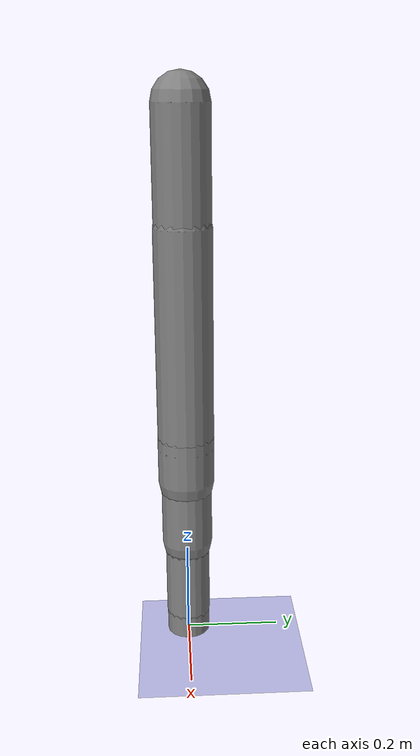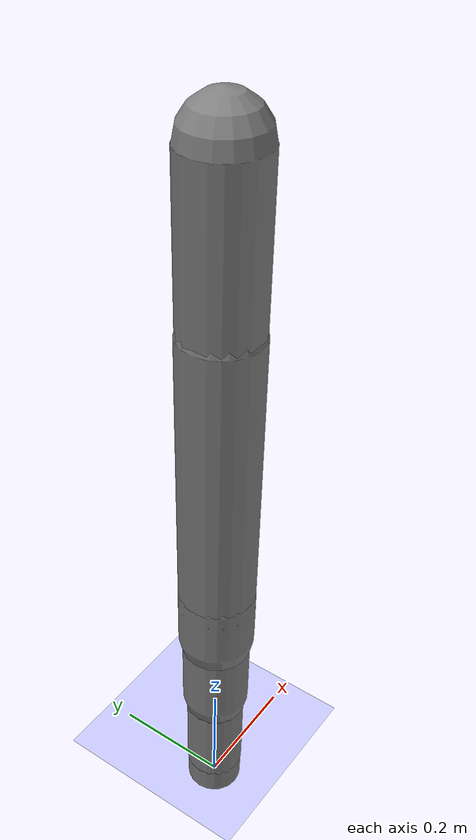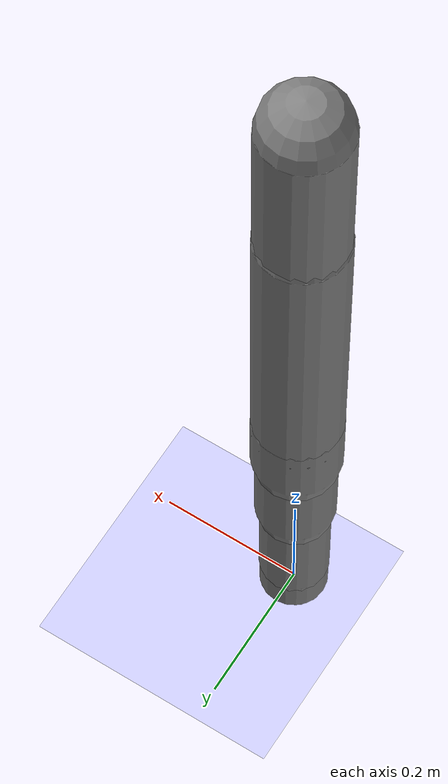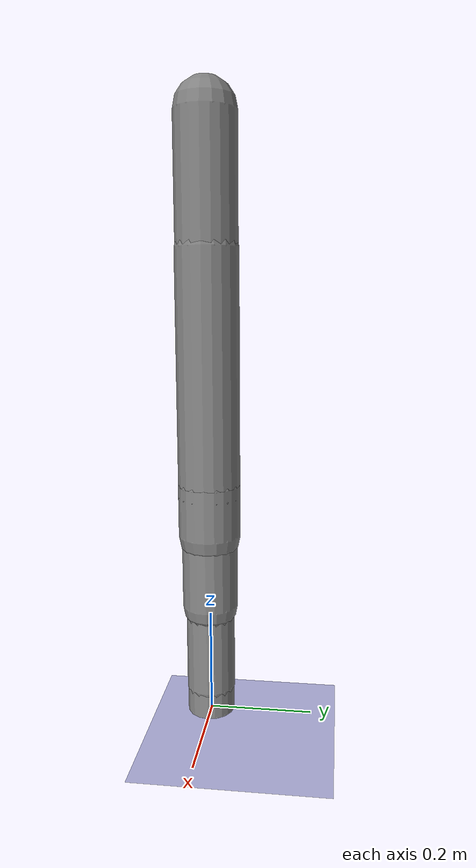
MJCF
<?xml version='1.0' encoding='UTF-8'?>
<mujoco model="robot_model">
  <worldbody>
    <light name="light" pos="0 -3 10" dir="0 0.5 -1" diffuse=".8 .8 .8" specular="0.1 0.1 0.1"/>
    <geom name="floor" type="plane" size="10.0 10.0 0.1" pos="0 0 0" rgba="0.8 0.8 1 1"/>
    <body name="limb0" pos="0 0 0">
      <geom type="capsule" fromto="0 0 0 0 0 0.29200954395426965" size="0.046492057454971134" density="712.8819842394439"/>
      <site type="sphere" size="0.01" name="limb0_site0" pos="0 0 0.22074129797852207"/>
      <site type="sphere" size="0.01" name="limb0_site1" pos="0 0 0.050759486582267664"/>
      <freejoint name="limb0_root"/>
      <body name="limb1" pos="0 0 0.22074129797852207">
        <geom type="capsule" fromto="0 0 0 0 0 0.3600789675341075" size="0.05407429494422454" density="619.3655655626594"/>
        <site type="sphere" size="0.01" name="limb1_site0" pos="0 0 0.14348370626259008"/>
        <body name="limb2" pos="0 0 0.14348370626259008">
          <geom type="capsule" fromto="0 0 0 0 0 0.1" size="0.06" density="971.2963022118728"/>
          <site type="sphere" size="0.01" name="limb2_site0" pos="0 0 0.08584434272995117"/>
          <body name="limb3" pos="0 0 0.08584434272995117">
            <geom type="capsule" fromto="0 0 0 0 0 0.3246346816300574" size="0.027985800535247497" density="877.8764988614424"/>
            <site type="sphere" size="0.01" name="limb3_site0" pos="0 0 0.30592291138675143"/>
            <body name="limb4" pos="0 0 0.30592291138675143">
              <geom type="capsule" fromto="0 0 0 0 0 0.38664313349290746" size="0.05825338637690475" density="1129.6842087872121"/>
              <joint name="joint_limb3_limb4_0" type="hinge" axis="0 0 1" range="-32.23675465955068 32.23675465955068" damping="5.0"/>
            </body>
            <joint name="joint_limb2_limb3_0" type="hinge" axis="1 0 0" range="-102.98912811609488 102.98912811609488" damping="5.0"/>
          </body>
          <joint name="joint_limb1_limb2_0" type="hinge" axis="1 0 0" range="-39.88258003655788 39.88258003655788" damping="5.0"/>
        </body>
        <joint name="joint_limb0_limb1_0" type="hinge" axis="0 1 0" range="-118.27639451941653 118.27639451941653" damping="5.0"/>
      </body>
      <body name="limb5" pos="0 0 0.050759486582267664">
        <geom type="capsule" fromto="0 0 0 0 0 0.212372033619958" size="0.047573406144593294" density="643.9443932461887"/>
        <site type="sphere" size="0.01" name="limb5_site0" pos="0 0 0.03879371297448123"/>
        <site type="sphere" size="0.01" name="limb5_site1" pos="0 0 0.15594539539804847"/>
        <body name="limb6" pos="0 0 0.03879371297448123">
          <geom type="capsule" fromto="0 0 0 0 0 0.49506834786402915" size="0.03678532303791788" density="732.350866634508"/>
          <site type="sphere" size="0.01" name="limb6_site0" pos="0 0 0.48864896668293684"/>
          <body name="limb7" pos="0 0 0.48864896668293684">
            <geom type="capsule" fromto="0 0 0 0 0 0.17987090326120395" size="0.045840603195653064" density="427.52554854241964"/>
            <site type="sphere" size="0.01" name="limb7_site0" pos="0 0 0.13622738925839864"/>
            <body name="limb8" pos="0 0 0.13622738925839864">
              <geom type="capsule" fromto="0 0 0 0 0 0.19891389615533042" size="0.030325208070064356" density="1018.0930803065299"/>
              <joint name="joint_limb7_limb8_0" type="hinge" axis="0 0 1" range="-104.59573439320407 104.59573439320407" damping="5.0"/>
            </body>
            <joint name="joint_limb6_limb7_0" type="hinge" axis="0 1 0" range="-101.73901430779064 101.73901430779064" damping="5.0"/>
          </body>
          <joint name="joint_limb5_limb6_0" type="hinge" axis="0 0 1" range="-98.208106043741 98.208106043741" damping="5.0"/>
        </body>
        <body name="limb9" pos="0 0 0.15594539539804847">
          <geom type="capsule" fromto="0 0 0 0 0 0.2879295497092825" size="0.04990344700900342" density="660.7067265019084"/>
          <site type="sphere" size="0.01" name="limb9_site0" pos="0 0 0.23449394497914045"/>
          <body name="limb10" pos="0 0 0.23449394497914045">
            <geom type="capsule" fromto="0 0 0 0 0 0.4676759956951593" size="0.05966738873335552" density="631.8729198528299"/>
            <joint name="joint_limb9_limb10_0" type="hinge" axis="1 0 0" range="-120.0 120.0" damping="5.0"/>
          </body>
          <joint name="joint_limb5_limb9_0" type="hinge" axis="1 0 0" range="-60.447908144064876 60.447908144064876" damping="5.0"/>
        </body>
        <joint name="joint_limb0_limb5_0" type="hinge" axis="0 0 1" range="-96.21716630603876 96.21716630603876" damping="5.0"/>
      </body>
    </body>
  </worldbody>
  <actuator>
    <position name="position_actuator_joint_limb0_limb1_0" joint="joint_limb0_limb1_0" gear="1.143090706227208" inheritrange="1" kp="10.0"/>
    <position name="position_actuator_joint_limb1_limb2_0" joint="joint_limb1_limb2_0" gear="1.8942672705904835" inheritrange="1" kp="10.0"/>
    <position name="position_actuator_joint_limb2_limb3_0" joint="joint_limb2_limb3_0" gear="1.285844846340357" inheritrange="1" kp="10.0"/>
    <position name="position_actuator_joint_limb3_limb4_0" joint="joint_limb3_limb4_0" gear="0.6866428973515241" inheritrange="1" kp="10.0"/>
    <position name="position_actuator_joint_limb0_limb5_0" joint="joint_limb0_limb5_0" gear="1.7817465554683207" inheritrange="1" kp="10.0"/>
    <position name="position_actuator_joint_limb5_limb6_0" joint="joint_limb5_limb6_0" gear="0.9075785035297382" inheritrange="1" kp="10.0"/>
    <position name="position_actuator_joint_limb6_limb7_0" joint="joint_limb6_limb7_0" gear="0.6855578824392156" inheritrange="1" kp="10.0"/>
    <position name="position_actuator_joint_limb7_limb8_0" joint="joint_limb7_limb8_0" gear="0.7049780118299882" inheritrange="1" kp="10.0"/>
    <position name="position_actuator_joint_limb5_limb9_0" joint="joint_limb5_limb9_0" gear="0.6161122835041217" inheritrange="1" kp="10.0"/>
    <position name="position_actuator_joint_limb9_limb10_0" joint="joint_limb9_limb10_0" gear="1.3594463277413298" inheritrange="1" kp="10.0"/>
  </actuator>
</mujoco>
